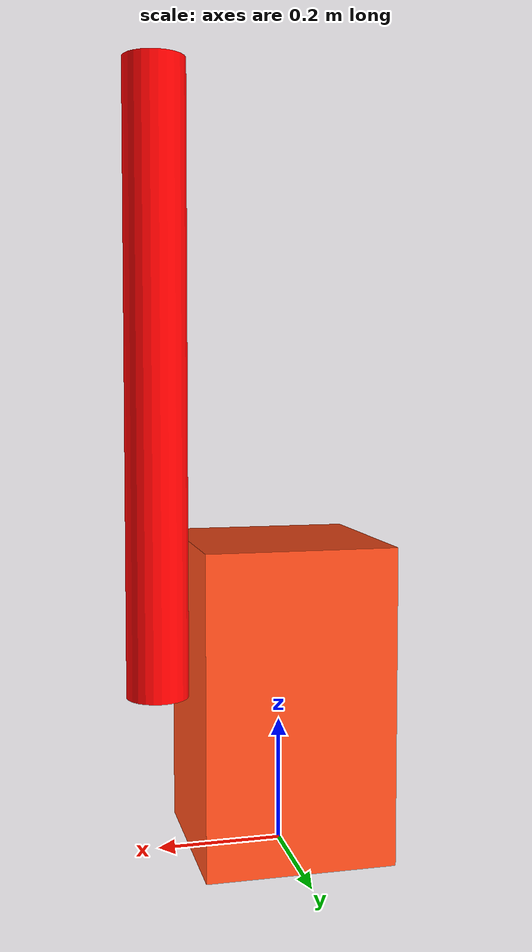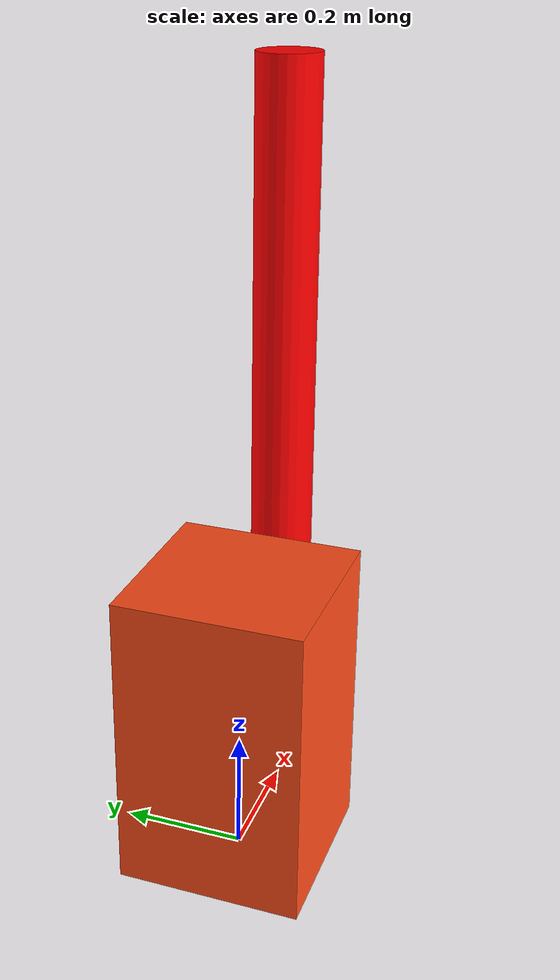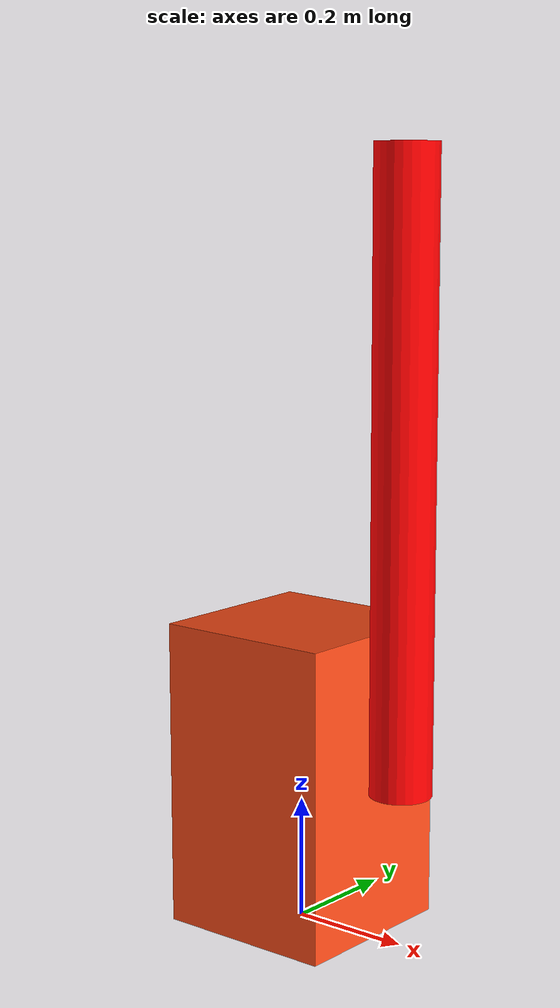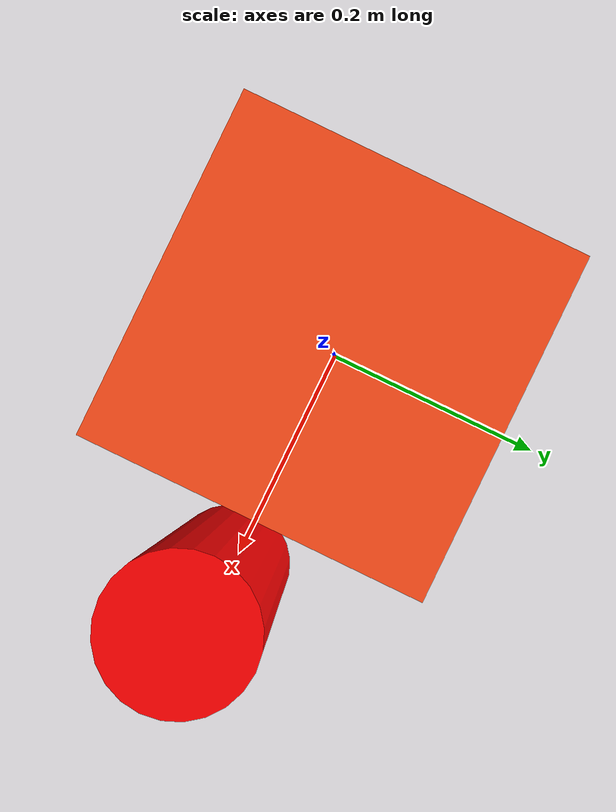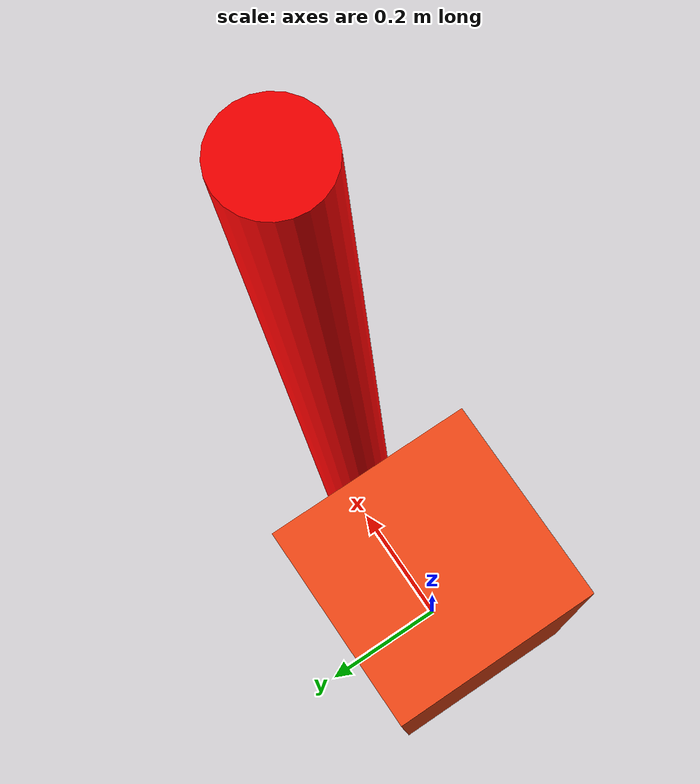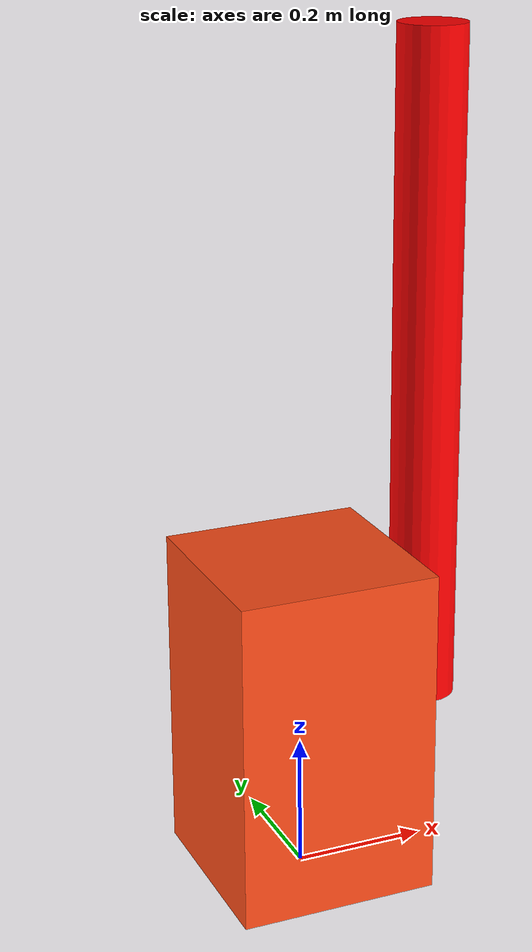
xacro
<?xml version="1.0" ?>

<robot name="simple_system" xmlns:xacro="http://ros.org/wiki/xacro">

  <!-- include ur5 macro -->
  <xacro:include filename="$(find system_description)/urdf/simple_system_parts.urdf" />

  <!-- include transmissions -->

  <!-- include simple system ros2_control description -->
  <xacro:include filename="$(find system_description)/urdf/simple_system_ros2_control.urdf" />

  <xacro:include filename="$(find system_description)/urdf/simple_system_gazebo.urdf" />

</robot>

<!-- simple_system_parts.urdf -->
<robot xmlns:xacro="http://www.ros.org/wiki/xacro" >

    <xacro:include filename="$(find system_description)/urdf/inertia_macros.urdf"/>

    <xacro:property name="base_length" value="0.3"/>
    <xacro:property name="base_width" value="0.3"/>
    <xacro:property name="base_height" value="0.5"/>
    <xacro:property name="base_mass" value="10.0"/>
    <xacro:property name="beam_radius" value="0.05"/>
    <xacro:property name="beam_length" value="1.0"/>
    <xacro:property name="beam_mass" value="1.0"/>

    <material name="white">
        <color rgba="1 1 1 1" />
    </material>

    <material name="orange">
        <color rgba="1 0.3 0.1 1"/>
    </material>

    <material name="blue">
        <color rgba="0.2 0.2 1 1"/>
    </material>

    <material name="black">
        <color rgba="0 0 0 1"/>
    </material>

    <material name="red">
        <color rgba="1 0 0 1"/>
    </material>

    <!-- Used for fixing robot to Gazebo 'base_link' -->
    <link name="world"/>

    <joint name="world_base_joint" type="fixed">
        <parent link="world"/>
        <child link="base_link"/>
    </joint>

    <!-- BASE LINK -->

    <link name="base_link">
        <visual>
            <origin xyz="0 0 ${base_height/2}" rpy="0 0 0"/>
            <geometry>
                <box size="${base_length} ${base_width} ${base_height}"/>
            </geometry>
            <material name="orange"/>
        </visual>
        <collision>
            <origin xyz="0 0 ${base_height/2}"/>
            <geometry>
                <box size="${base_length} ${base_width} ${base_height}"/>
            </geometry>
        </collision>
        <xacro:inertial_box mass="${base_mass}" x="${base_length}" y="${base_width}" z="${base_height}">
            <origin xyz="0 0 ${base_height/2}" rpy="0 0 0"/>
        </xacro:inertial_box>
    </link>

    <gazebo reference="base_link">
        <material>Gazebo/Orange</material>
    </gazebo>

    <!-- BASE TO BEAM JOINT -->

    <joint name="motor_joint" type="revolute">
        <parent link="base_link"/>
        <child link="beam_link"/>
        <origin xyz="${base_width/2} 0 ${base_height/2}" rpy=" ${pi/2} 0 ${pi/2}"/>

        <axis xyz="0 0 1" />
        <limit
            lower="-${pi}"
            upper="${pi}"
            effort="10"
            velocity="3" />
        <dynamics damping="0.1" friction="0.4"/>
    </joint>

    <!-- BEAM LINK -->

    <link name="beam_link">
        <visual>
            <geometry>
                <cylinder radius="${beam_radius}" length="${beam_length}"/>
            </geometry>
            <material name="red"/>
            <origin xyz="0 ${beam_length/2} ${beam_radius}" rpy="0 ${pi/2} ${pi/2}"/>
        </visual>
        <collision>
            <origin xyz="0 ${beam_length/2} ${beam_radius}" rpy="0 ${pi/2} ${pi/2}"/>
            <geometry>
                <cylinder radius="${beam_radius}" length="${beam_length}"/>
            </geometry>
        </collision>
        <xacro:inertial_cylinder mass="${beam_mass}" length="${beam_length}" radius="${beam_radius}">
            <origin xyz="0 ${beam_length/2} ${beam_radius}" rpy="0 ${pi/2} ${pi/2}"/>
        </xacro:inertial_cylinder>
    </link>

    <gazebo reference="beam_link">
        <material>Gazebo/Red</material>
    </gazebo>

</robot>

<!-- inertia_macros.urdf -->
<robot xmlns:xacro="http://www.ros.org/wiki/xacro" >

    <!-- Specify some standard inertial calculations https://en.wikipedia.org/wiki/List_of_moments_of_inertia -->
    <!-- These make use of xacro's mathematical functionality -->

    <xacro:macro name="inertial_box" params="mass x y z *origin">
        <inertial>
            <xacro:insert_block name="origin"/>
            <mass value="${mass}" />
            <inertia ixx="${(1/12) * mass * (y*y+z*z)}" ixy="0.0" ixz="0.0"
                    iyy="${(1/12) * mass * (x*x+z*z)}" iyz="0.0"
                    izz="${(1/12) * mass * (x*x+y*y)}" />
        </inertial>
    </xacro:macro>

    <xacro:macro name="inertial_cylinder" params="mass length radius *origin">
        <inertial>
            <xacro:insert_block name="origin"/>
            <mass value="${mass}" />
            <inertia ixx="${(1/12) * mass * (3*radius*radius + length*length)}" ixy="0.0" ixz="0.0"
                    iyy="${(1/12) * mass * (3*radius*radius + length*length)}" iyz="0.0"
                    izz="${(1/2) * mass * (radius*radius)}" />
        </inertial>
    </xacro:macro>

</robot>
